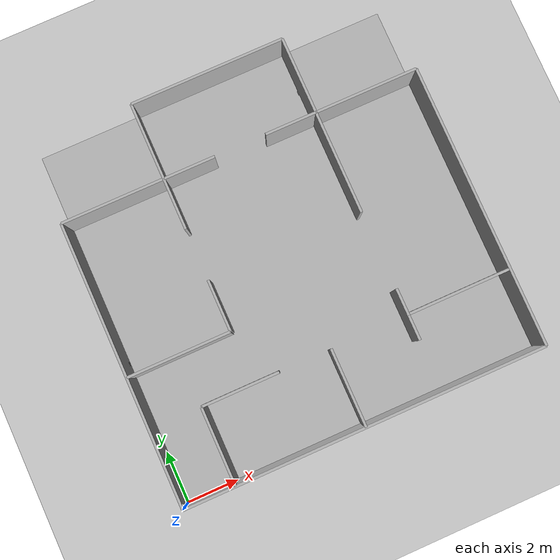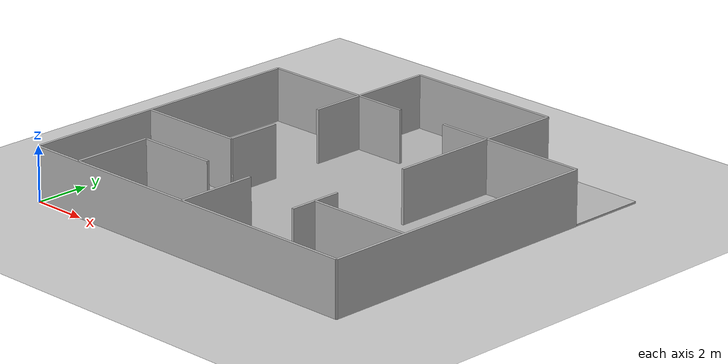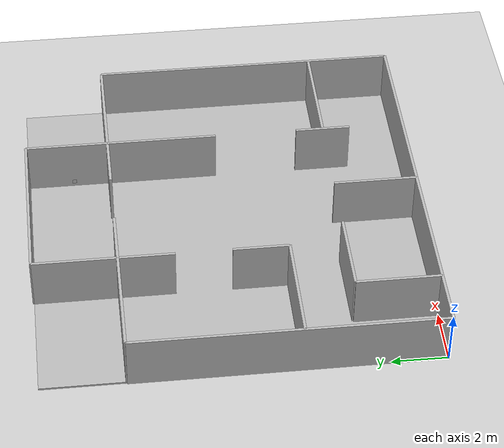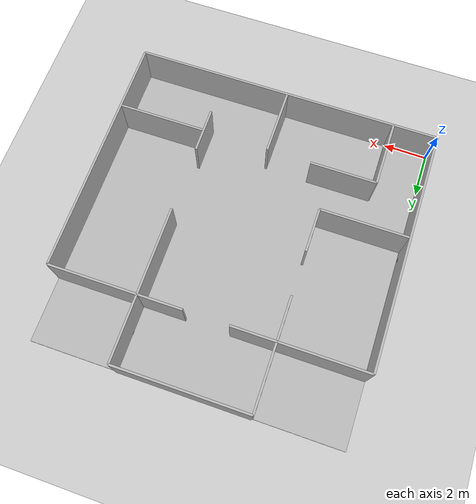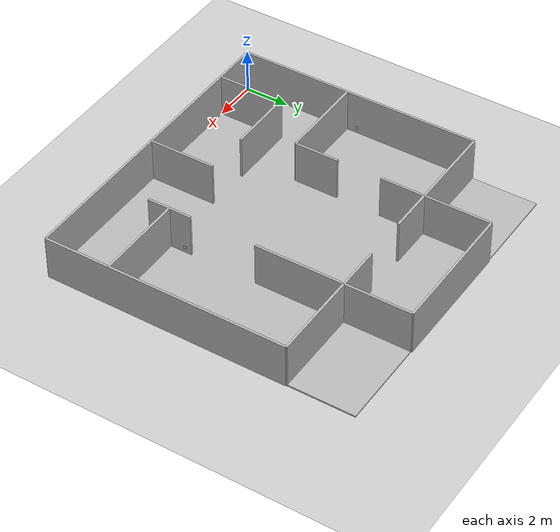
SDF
<sdf version="1.7">
 <world name="default">
  <scene><shadows>0</shadows></scene>
  <physics type="ode">
   <gravity>0 0 -9.81</gravity>
   <ode>
    <solver><type>quick</type><iters>20</iters><sor>1.0</sor></solver>
    <constraints>
     <cfm>0.0</cfm>
     <erp>0.2</erp>
     <contact_max_correcting_vel>100.0</contact_max_correcting_vel>
     <contact_surface_layer>0.0</contact_surface_layer>
    </constraints>
   </ode>
   <real_time_update_rate>1000</real_time_update_rate>
   <max_step_size>0.001</max_step_size>
  </physics>
  <include><uri>model://sun</uri></include>
  <include><uri>model://ground_plane</uri></include>
  <include><uri>model://floor</uri><name>floor</name><pose>7 7 0 0 0 0</pose></include>
  <include><uri>model://wall_f</uri><name>Wall Left F</name><pose>0 5.5 0 0 0 1.570796327</pose></include>
  <include><uri>model://wall_f</uri><name>Wall Right F</name><pose>14 5.5 0 0 0 1.570796327</pose></include>
  <include><uri>model://wall_e</uri><name>Wall Down E</name><pose>7 0 0 0 0 0</pose></include>
  <include><uri>model://wall_a</uri><name>Wall UP Left A</name><pose>2 11 0 0 0 0</pose></include>
  <include><uri>model://wall_a</uri><name>Wall UP Right A</name><pose>12 11 0 0 0 0</pose></include>
  <include><uri>model://wall_b</uri><name>Wall UP Left B</name><pose>4 12.5 0 0 0 1.570796327</pose></include>
  <include><uri>model://wall_b</uri><name>Wall UP Right B</name><pose>10 12.5 0 0 0 1.570796327</pose></include>
  <include><uri>model://wall_c</uri><name>Wall UP C</name><pose>7 14 0 0 0 0</pose></include>
  <include><uri>model://wall_a</uri><name>Wall A1</name><pose>2 5 0 0 0 0</pose></include>
  <include><uri>model://wall_d</uri><name>Wall D1_1</name><pose>4 10 0 0 0 1.570796327</pose></include>
  <include><uri>model://wall_d</uri><name>Wall D1_2</name><pose>4 6 0 0 0 1.570796327</pose></include>
  <include><uri>model://wall_d</uri><name>Wall D2_1</name><pose>5 11 0 0 0 0</pose></include>
  <include><uri>model://wall_d</uri><name>Wall D2_2</name><pose>9 11 0 0 0 0</pose></include>
  <include><uri>model://wall_a</uri><name>Wall A3_2</name><pose>12 3 0 0 0 0</pose></include>
  <include><uri>model://wall_d</uri><name>Wall D3</name><pose>10 3 0 0 0 1.570796327</pose></include>
  <include><uri>model://wall_a</uri><name>Wall A3_1</name><pose>10 9 0 0 0 1.570796327</pose></include>
  <include><uri>model://wall_b</uri><name>Wall BS2</name><pose>3.5 3 0 0 0 0</pose></include>
  <include><uri>model://wall_b</uri><name>Wall BS1</name><pose>2 1.5 0 0 0 1.570796327</pose></include>
  <include><uri>model://wall_b</uri><name>Wall BS3</name><pose>7 1.5 0 0 0 1.570796327</pose></include>
  <include><uri>model://marker_1</uri><name>Marker id1</name><pose>0.05 5.5 0.3 0 0 1.570796327</pose></include>
  <include><uri>model://marker_2</uri><name>Marker id2</name><pose>9.9 12.3 0.3 0 0 1.57</pose></include>
  <include>
   <uri>model://marker_3</uri>
   <name>Marker id3</name>
   <pose>10.05 3.7 0.3 0 0 1.570796327</pose>
  </include>
 </world>
</sdf>

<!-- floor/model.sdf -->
<sdf version="1.7">
    <model name="ground_floor">
        <static>true</static>
        <link name="link">
            <collision name="collision">
                <geometry>
                    <box>
                        <size>14.0 14.0 0.1</size>
                    </box>
                </geometry>
            </collision>
            <visual name="visual">
                <cast_shadows>false</cast_shadows>
                <geometry>
                    <box>
                        <size>14.0 14.0 0.1</size>
                    </box>
                </geometry>
                <material>
                    <script>
                        <uri>model://floor/materials/scripts</uri>
                        <uri>model://floor/materials/textures</uri>
                        <name>vrc/groundfloor</name>
                    </script>
                </material>
            </visual>
        </link>
    </model>
</sdf>

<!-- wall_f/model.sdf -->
<sdf version="1.7">
    <model name="wall_e">
        <static>true</static>
        <link name="link">
            <pose>0 0 1.0 0 0 0</pose>
            <collision name="collision">
                <geometry>
                    <box>
                        <size>11.0 0.1 2.0</size>
                    </box>
                </geometry>
            </collision>
            <visual name="visual">
                <cast_shadows>false</cast_shadows>
                <geometry>
                    <box>
                        <size>11.0 0.1 2.0</size>
                    </box>
                </geometry>
                <material>
                    <script>
                        <uri>model://wall_a/materials/scripts</uri>
                        <uri>model://wall_a/materials/textures</uri>
                        <name>vrc/wall</name>
                    </script>
                </material>
            </visual>
        </link>
    </model>
</sdf>

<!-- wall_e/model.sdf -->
<sdf version="1.7">
    <model name="wall_e">
        <static>true</static>
        <link name="link">
            <pose>0 0 1.0 0 0 0</pose>
            <collision name="collision">
                <geometry>
                    <box>
                        <size>14.0 0.1 2.0</size>
                    </box>
                </geometry>
            </collision>
            <visual name="visual">
                <cast_shadows>false</cast_shadows>
                <geometry>
                    <box>
                        <size>14.0 0.1 2.0</size>
                    </box>
                </geometry>
                <material>
                    <script>
                        <uri>model://wall_a/materials/scripts</uri>
                        <uri>model://wall_a/materials/textures</uri>
                        <name>vrc/wall</name>
                    </script>
                </material>
            </visual>
        </link>
    </model>
</sdf>

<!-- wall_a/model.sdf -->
<sdf version="1.7">
    <model name="wall_a">
        <static>true</static>
        <link name="link">
            <pose>0 0 1.0 0 0 0</pose>
            <collision name="collision">
                <geometry>
                    <box>
                        <size>4.0 0.1 2.0</size>
                    </box>
                </geometry>
            </collision>
            <visual name="visual">
                <cast_shadows>false</cast_shadows>
                <geometry>
                    <box>
                        <size>4.0 0.1 2.0</size>
                    </box>
                </geometry>
                <material>
                    <script>
                        <uri>model://wall_a/materials/scripts</uri>
                        <uri>model://wall_a/materials/textures</uri>
                        <name>vrc/wall</name>
                    </script>
                </material>
            </visual>
        </link>
    </model>
</sdf>

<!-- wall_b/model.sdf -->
<sdf version="1.7">
    <model name="wall_b">
        <static>true</static>
        <link name="link">
            <pose>0 0 1.0 0 0 0</pose>
            <collision name="collision">
                <geometry>
                    <box>
                        <size>3.0 0.1 2.0</size>
                    </box>
                </geometry>
            </collision>
            <visual name="visual">
                <cast_shadows>false</cast_shadows>
                <geometry>
                    <box>
                        <size>3.0 0.1 2.0</size>
                    </box>
                </geometry>
                <material>
                    <script>
                        <uri>model://wall_a/materials/scripts</uri>
                        <uri>model://wall_a/materials/textures</uri>
                        <name>vrc/wall</name>
                    </script>
                </material>
            </visual>
        </link>
    </model>
</sdf>

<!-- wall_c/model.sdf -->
<sdf version="1.7">
    <model name="wall_c">
        <static>true</static>
        <link name="link">
            <pose>0 0 1.0 0 0 0</pose>
            <collision name="collision">
                <geometry>
                    <box>
                        <size>6.0 0.1 2.0</size>
                    </box>
                </geometry>
            </collision>
            <visual name="visual">
                <cast_shadows>false</cast_shadows>
                <geometry>
                    <box>
                        <size>6.0 0.1 2.0</size>
                    </box>
                </geometry>
                <material>
                    <script>
                        <uri>model://wall_a/materials/scripts</uri>
                        <uri>model://wall_a/materials/textures</uri>
                        <name>vrc/wall</name>
                    </script>
                </material>
            </visual>
        </link>
    </model>
</sdf>

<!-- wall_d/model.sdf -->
<sdf version="1.7">
    <model name="wall_d">
        <static>true</static>
        <link name="link">
            <pose>0 0 1.0 0 0 0</pose>
            <collision name="collision">
                <geometry>
                    <box>
                        <size>2.0 0.1 2.0</size>
                    </box>
                </geometry>
            </collision>
            <visual name="visual">
                <cast_shadows>false</cast_shadows>
                <geometry>
                    <box>
                        <size>2.0 0.1 2.0</size>
                    </box>
                </geometry>
                <material>
                    <script>
                        <uri>model://wall_a/materials/scripts</uri>
                        <uri>model://wall_a/materials/textures</uri>
                        <name>vrc/wall</name>
                    </script>
                </material>
            </visual>
        </link>
    </model>
</sdf>

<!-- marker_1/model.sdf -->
<sdf version="1.7">
    <model name="marker_1">
        <static>true</static>
        <link name="link">
            <collision name="collision">
                <geometry>
                    <box>
                        <size>.16 0.001 .16</size>
                    </box>
                </geometry>
            </collision>
            <visual name="visual">
                <cast_shadows>false</cast_shadows>
                <geometry>
                    <box>
                        <size>.16 0.001 .16</size>
                    </box>
                </geometry>
                <material>
                    <script>
                        <uri>model://marker_1/materials/scripts</uri>
                        <uri>model://marker_1/materials/textures</uri>
                        <name>vrc/marker1</name>
                    </script>
                </material>
            </visual>
        </link>
    </model>
</sdf>

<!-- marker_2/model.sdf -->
<sdf version="1.7">
    <model name="marker_2">
        <static>true</static>
        <link name="link">
            <collision name="collision">
                <geometry>
                    <box>
                        <size>.16 0.001 .16</size>
                    </box>
                </geometry>
            </collision>
            <visual name="visual">
                <cast_shadows>false</cast_shadows>
                <geometry>
                    <box>
                        <size>.16 0.001 .16</size>
                    </box>
                </geometry>
                <material>
                    <script>
                        <uri>model://marker_2/materials/scripts</uri>
                        <uri>model://marker_2/materials/textures</uri>
                        <name>vrc/marker2</name>
                    </script>
                </material>
            </visual>
        </link>
    </model>
</sdf>

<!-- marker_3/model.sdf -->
<sdf version="1.7">
    <model name="marker_3">
        <static>true</static>
        <link name="link">
            <collision name="collision">
                <geometry>
                    <box>
                        <size>.16 0.001 .16</size>
                    </box>
                </geometry>
            </collision>
            <visual name="visual">
                <cast_shadows>false</cast_shadows>
                <geometry>
                    <box>
                        <size>.16 0.001 .16</size>
                    </box>
                </geometry>
                <material>
                    <script>
                        <uri>model://marker_3/materials/scripts</uri>
                        <uri>model://marker_3/materials/textures</uri>
                        <name>vrc/marker3</name>
                    </script>
                </material>
            </visual>
        </link>
    </model>
</sdf>
